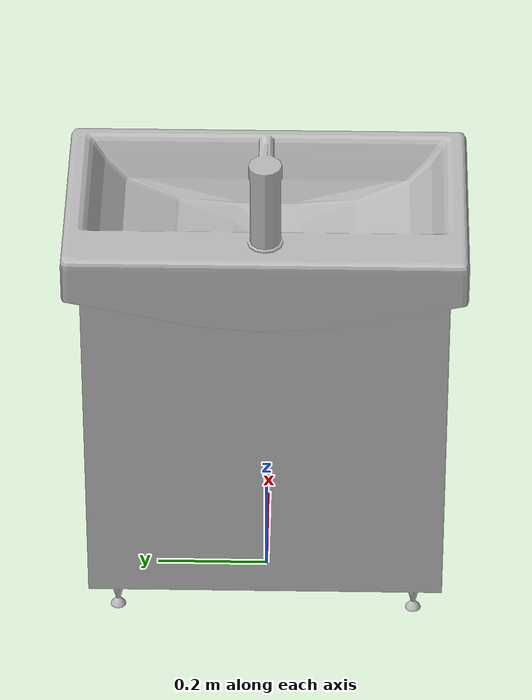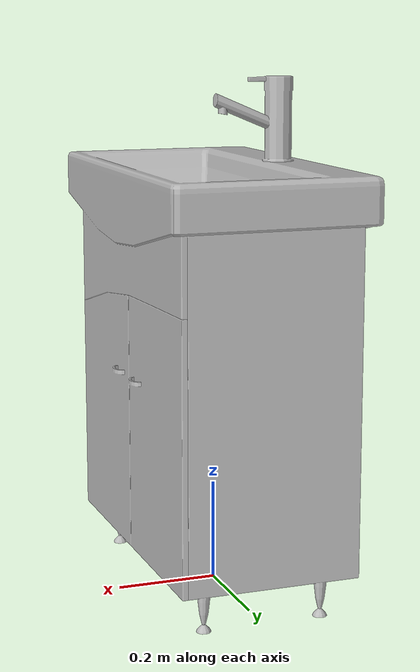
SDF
<?xml version='1.0'?>
<sdf version='1.4'>
  <model name='74'>
    <pose>0 0 0 0 0 0</pose>
    <static>true</static>
    <link name='link'>
      <collision name='collision'>
        <pose>0 0 0 0 0 0</pose>
        <geometry>
          <box>
            <size>0.4 0.70018 2</size>
          </box>
        </geometry>
      </collision>
      <visual name='visual'>
        <pose>0 0 0 0 0 0</pose>
        <geometry>
          <mesh><uri>model://74/74.dae</uri></mesh>
        </geometry>
      </visual>
    </link>
  </model>
</sdf>
